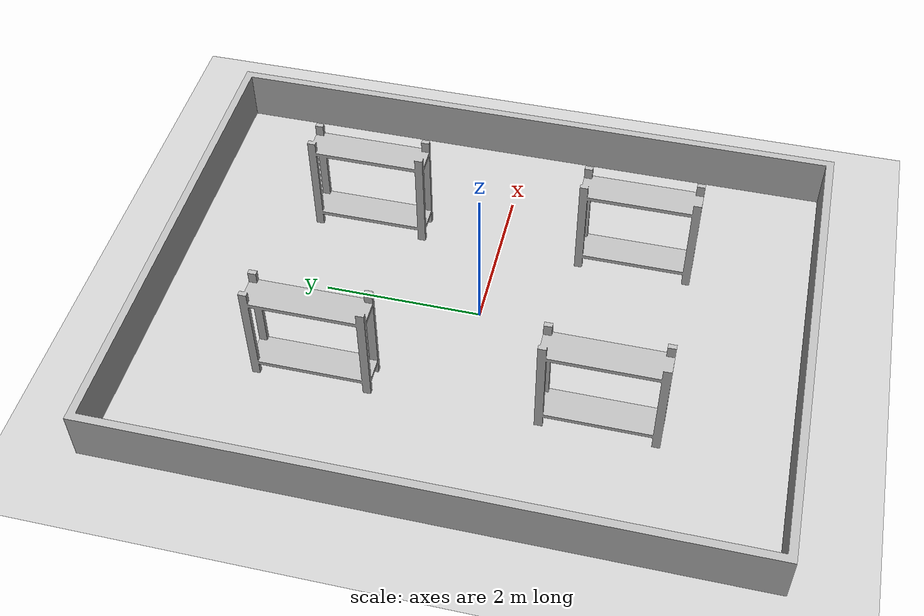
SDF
<?xml version="1.0" ?>
<sdf version='1.4'>
  <world name='default'>
    <!-- A global light source -->
    <include>
      <uri>model://sun</uri>
    </include>
    <!-- A ground plane -->
    <include>
      <uri>model://ground_plane</uri>
    </include>

    <physics type="ode">
      <max_step_size>0.001</max_step_size>
      <real_time_factor>1</real_time_factor>
      <real_time_update_rate>1000</real_time_update_rate>
      <gravity> 0 0 -500 </gravity>
      <ode>
        <solver>
          <type>quick</type>
          <iters>50</iters>
          <sor>1.4</sor>
        </solver>
        <constraints>
          <cfm>0</cfm>
          <erp>1</erp>
          <contact_max_correcting_vel>0</contact_max_correcting_vel>
          <contact_surface_layer>0</contact_surface_layer>
        </constraints>
      </ode>
    </physics>
<model name='wall'>
      <pose>0 0 0.4 0 0 1.57</pose>
      <link name='wall'>
        <inertial>
          <mass>1</mass>
          <inertia>
            <ixx>1</ixx>
            <ixy>0</ixy>
            <ixz>0</ixz>
            <iyy>1</iyy>
            <iyz>0</iyz>
            <izz>1</izz>
          </inertia>
        </inertial>
        <collision name='wall_collision'>
        <geometry>
          <mesh>
            <uri>file:///home/hxq/agv_ws/src/agv_model/meshes/simu_model.dae</uri>
          </mesh>
        </geometry>
          <max_contacts>10</max_contacts>
          <surface>
            <bounce/>
            <friction>
              <ode/>
            </friction>
            <contact>
              <ode/>
            </contact>
          </surface>
        </collision>
        <visual name="wall_visual">
        <pose>0 0 0 0 0 0</pose>
        <geometry>
          <mesh>
            <uri>file:///home/hxq/agv_ws/src/agv_model/meshes/simu_model.dae</uri>
          </mesh>
        </geometry>
      </visual>
        <velocity_decay>
          <linear>0</linear>
          <angular>0</angular>
        </velocity_decay>
        <self_collide>0</self_collide>
        <kinematic>0</kinematic>
        <gravity>1</gravity>
      </link>
      <static>1</static>
    </model>

  </world>
</sdf>
